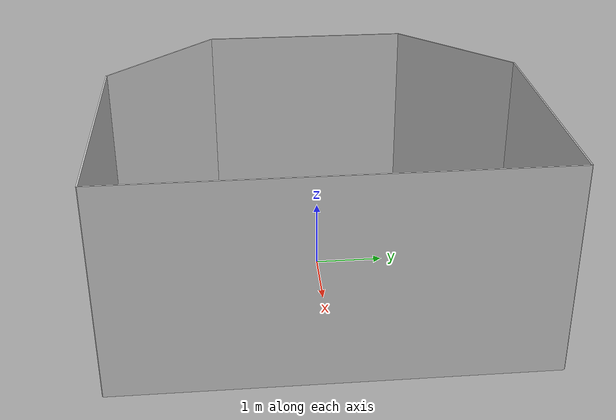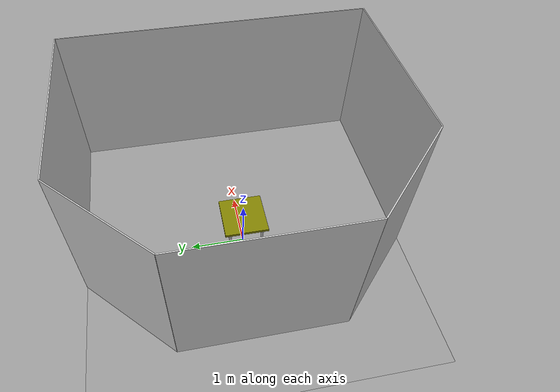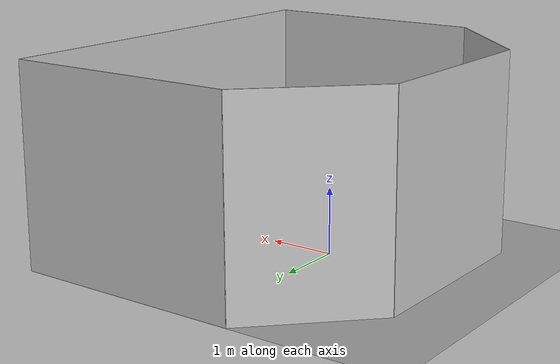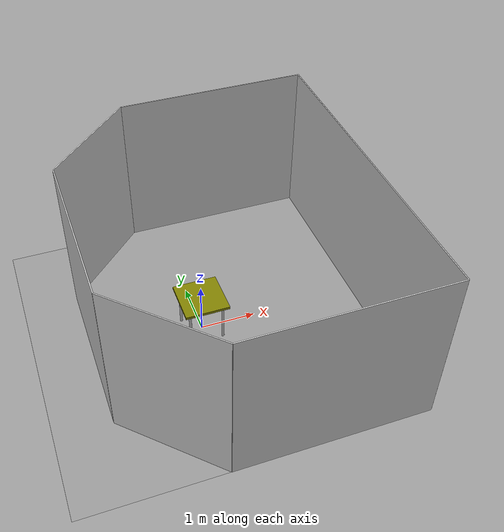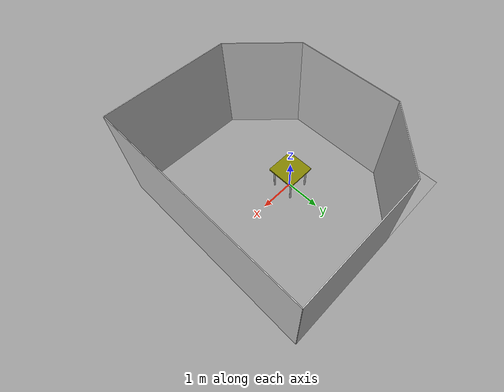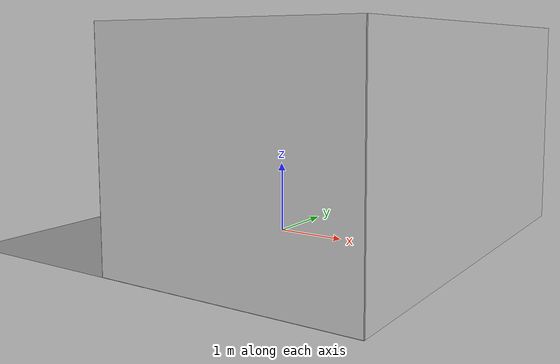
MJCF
<mujoco model="table_scene">
  <asset>
    <texture builtin="gradient" height="256" rgb1=".9 .9 1." rgb2=".2 .3 .4" type="skybox"
      width="256" />
    <!-- Floor texture using built-in gradient -->
    <texture builtin="gradient" height="256" width="256" rgb1="0.7 0.7 0.7" rgb2="0.5 0.5 0.5"
      name="texplane" />
    <material name="floorplane" reflectance="0.01" shininess="0.0" specular="0.0" texrepeat="2 2"
      texture="texplane" texuniform="true" />
    <!-- ceramic table texture and material-->
    <texture builtin="flat" height="512" width="512" rgb1="0.9 0.9 0.9" rgb2="0.8 0.8 0.8"
      name="tex-ceramic" />
    <material name="table_ceramic" reflectance="0.0" shininess="0.0" specular="0.2" texrepeat="1 1"
      texture="tex-ceramic" />
    <!-- steel legs using built-in metallic texture -->
    <texture builtin="gradient" height="256" width="256" rgb1="0.8 0.8 0.8" rgb2="0.6 0.6 0.6"
      name="tex-steel-brushed" />
    <material name="table_legs_metal" reflectance="0.8" shininess="0.8" texrepeat="1 1"
      texture="tex-steel-brushed" />
    <!-- plaster walls using built-in flat texture -->
    <texture builtin="flat" height="256" width="256" rgb1="0.8 0.8 0.8" rgb2="0.7 0.7 0.7"
      name="tex-light-gray-plaster" />
    <material name="walls_mat" reflectance="0.0" shininess="0.1" specular="0.1" texrepeat="3 3"
      texture="tex-light-gray-plaster" texuniform="true" />
    <!-- added table texture and material for domain randomization -->
    <texture name="textable" builtin="flat" height="512" width="512" rgb1="0.5 0.5 0.5"
      rgb2="0.5 0.5 0.5" />
    <material name="table_mat" texture="textable" />

  </asset>
  <worldbody>
    <!-- Floor -->
    <geom condim="3" group="1" material="floorplane" name="floor" pos="0 0 0" size="3 3 .125"
      type="plane" />
    <!-- Walls (visual only) -->
    <geom pos="-1.25 2.25 1.5" quat="0.6532815 0.6532815 0.2705981 0.2705981" size="1.06 1.5 0.01"
      type="box" conaffinity="0" contype="0" group="1" name="wall_leftcorner_visual"
      material="walls_mat" />
    <geom pos="-1.25 -2.25 1.5" quat="0.6532815 0.6532815 -0.2705981 -0.2705981"
      size="1.06 1.5 0.01" type="box" conaffinity="0" contype="0" group="1"
      name="wall_rightcorner_visual" material="walls_mat" />
    <geom pos="1.25 3 1.5" quat="0.7071 0.7071 0 0" size="1.75 1.5 0.01" type="box" conaffinity="0"
      contype="0" group="1" name="wall_left_visual" material="walls_mat" />
    <geom pos="1.25 -3 1.5" quat="0.7071 -0.7071 0 0" size="1.75 1.5 0.01" type="box"
      conaffinity="0" contype="0" group="1" name="wall_right_visual" material="walls_mat" />
    <geom pos="-2 0 1.5" quat="0.5 0.5 0.5 0.5" size="1.5 1.5 0.01" type="box" conaffinity="0"
      contype="0" group="1" name="wall_rear_visual" material="walls_mat" />
    <geom pos="3 0 1.5" quat="0.5 0.5 -0.5 -0.5" size="3 1.5 0.01" type="box" conaffinity="0"
      contype="0" group="1" name="wall_front_visual" material="walls_mat" />
    <!-- Table body -->
    <body name="table" pos="0.0 0.0 0.775">
      <geom pos="0 0 0" size="0.4 0.4 0.025" type="box" group="0" name="table_collision"
        friction="1.0 0.005 0.0001" rgba="0.5 0.5 0 1" />
      <geom pos="0 0 0" size="0.4 0.4 0.025" type="box" conaffinity="0" contype="0" group="1"
        name="table_visual" material="table_ceramic" />
      <site pos="0.0 0.0 0.025" name="table_top" size="0.001 0.001 0.001" rgba="0 0 0 0" />

      <geom pos="0.30000000000000004 0.30000000000000004 -0.3875" size="0.025 0.3875"
        type="cylinder" conaffinity="0" contype="0" group="1" name="table_leg1_visual"
        material="table_legs_metal" />
      <geom pos="-0.30000000000000004 0.30000000000000004 -0.3875" size="0.025 0.3875"
        type="cylinder" conaffinity="0" contype="0" group="1" name="table_leg2_visual"
        material="table_legs_metal" />
      <geom pos="-0.30000000000000004 -0.30000000000000004 -0.3875" size="0.025 0.3875"
        type="cylinder" conaffinity="0" contype="0" group="1" name="table_leg3_visual"
        material="table_legs_metal" />
      <geom pos="0.30000000000000004 -0.30000000000000004 -0.3875" size="0.025 0.3875"
        type="cylinder" conaffinity="0" contype="0" group="1" name="table_leg4_visual"
        material="table_legs_metal" />
    </body>
    <light pos="1.0 1.0 1.5" dir="-0.2 -0.2 -1" specular="0.3 0.3 0.3" directional="true"
      castshadow="false" />
    <!-- front view -->
    <camera mode="fixed" name="frontview" pos="1.6 0 1.45" quat="0.56 0.43 0.43 0.56" />
    <!-- bird view -->
    <camera mode="fixed" name="birdview" pos="-0.2 0 3.0" quat="0.7071 0 0 0.7071" />
    <!-- agent view -->
    <camera mode="fixed" name="agentview" pos="0.5 0 1.35" quat="0.653 0.271 0.271 0.653" />
    <!-- side view -->
    <camera mode="fixed" name="sideview"
      pos="-0.05651774593317116 1.2761224129427358 1.4879572214102434"
      quat="0.009905065491771751 0.006877963156909582 0.5912228352893879 0.806418094001364" />
  </worldbody>
</mujoco>
